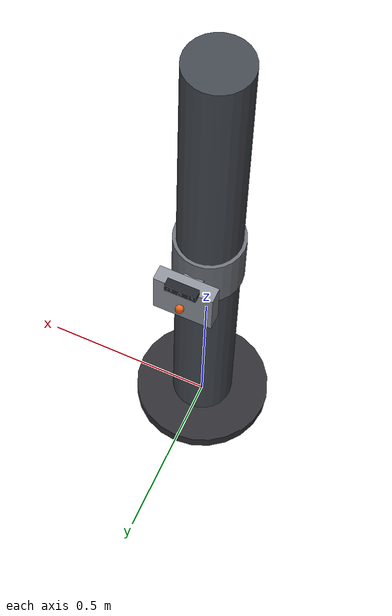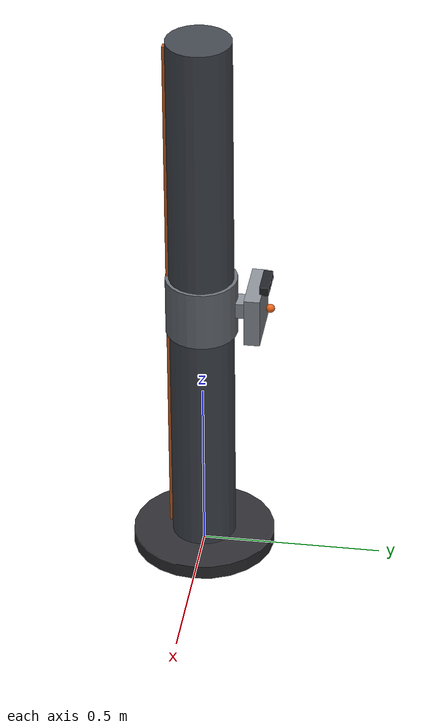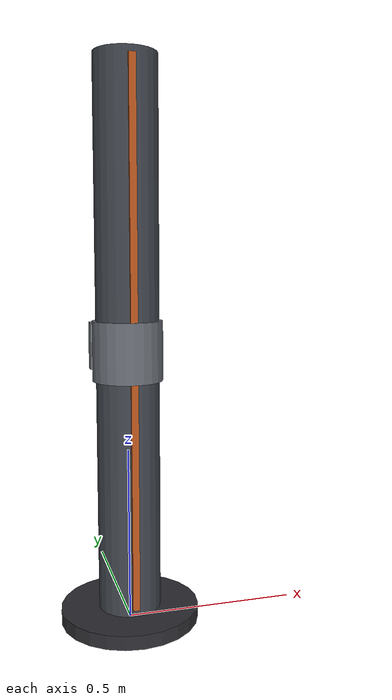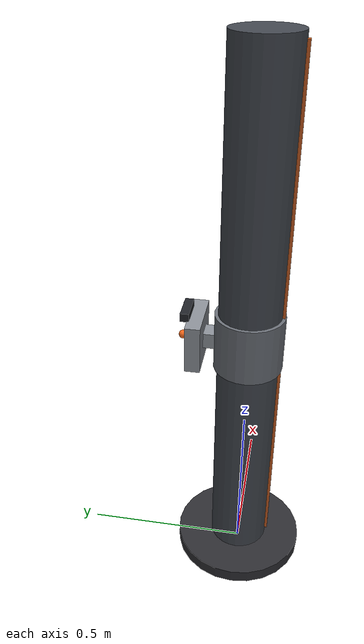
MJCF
<mujoco model="lift_tower">
  <!-- MuJoCo defaults to angle="degree". Without this line the hinge
       range below is read as +/-3.14 DEGREES and the tower barely turns. -->
  <compiler angle="radian" autolimits="true"/>

  <default>
    <default class="tower">
      <geom contype="1" conaffinity="2" rgba="0.26 0.28 0.31 1"
            solref="0.004 1" solimp="0.95 0.99 0.001"/>
    </default>
  </default>

  <worldbody>
    <body name="tower_base" pos="0 0 0">
      <geom name="base_plate" class="tower" type="cylinder"
            pos="0 0 0.02" size="0.20 0.02" rgba="0.18 0.18 0.20 1"/>

      <!-- ===== ROTARY JOINT ===== -->
      <body name="tower_column" pos="0 0 0.04">
        <joint name="tower_yaw" type="hinge" axis="0 0 1"
               range="-3.14159 3.14159" damping="12" armature="0.25"/>
        <inertial pos="0 0 0.55" mass="28" diaginertia="3.2 3.2 0.45"/>
        <geom name="column" class="tower" type="cylinder"
              pos="0 0 0.78" size="0.090 0.78"/>
        <!-- fin makes the rotation legible on camera -->
        <geom name="column_fin" class="tower" type="box"
              pos="0 -0.085 0.78" size="0.010 0.012 0.76"
              rgba="0.75 0.35 0.12 1"/>

        <!-- ===== PRISMATIC JOINT ===== -->
        <body name="carriage" pos="0 0 0.75">
          <joint name="tower_lift" type="slide" axis="0 0 1"
                 range="0 0.70" damping="220" armature="0.6"/>
          <inertial pos="0 0.10 0" mass="9" diaginertia="0.14 0.14 0.11"/>
          <!-- collar rides the column -->
          <geom name="carriage_collar" class="tower" type="cylinder"
                pos="0 0 0" size="0.100 0.085" rgba="0.42 0.44 0.47 1"/>
          <geom name="carriage_arm" class="tower" type="box"
                pos="0 0.095 0" size="0.0275 0.035 0.0225" rgba="0.55 0.57 0.60 1"/>
          <geom name="shoulder_plate" class="tower" type="box"
                pos="0 0.150 0" size="0.085 0.022 0.070" rgba="0.55 0.57 0.60 1"/>
          <site name="arm_mount" pos="0 0.190 0" size="0.012" rgba="0.95 0.4 0.1 1"/>

          <geom name="camera_body" type="box" contype="0" conaffinity="0"
                pos="0 0.178 0.080" size="0.045 0.0125 0.0125"
                rgba="0.13 0.14 0.16 1"/>
          <geom name="camera_lens_left" type="cylinder" contype="0" conaffinity="0"
                pos="-0.030 0.1908 0.080" euler="1.5708 0 0" size="0.0065 0.0022"
                rgba="0.05 0.07 0.13 1"/>
          <geom name="camera_lens_rgb" type="cylinder" contype="0" conaffinity="0"
                pos="0 0.1908 0.080" euler="1.5708 0 0" size="0.0050 0.0022"
                rgba="0.02 0.02 0.03 1"/>
          <geom name="camera_lens_right" type="cylinder" contype="0" conaffinity="0"
                pos="0.030 0.1908 0.080" euler="1.5708 0 0" size="0.0065 0.0022"
                rgba="0.05 0.07 0.13 1"/>
          <camera name="tower_eye" pos="0 0.190 0.080"
                  xyaxes="1 0 0  0 0.3420 0.9397" fovy="75"
                  resolution="640 480"/>
        </body>
      </body>
    </body>
  </worldbody>

  <actuator>
    <position name="tower_yaw_ctrl"  joint="tower_yaw"
              kp="900" kv="60"  ctrlrange="-3.14159 3.14159" forcerange="-320 320"/>
    <position name="tower_lift_ctrl" joint="tower_lift"
              kp="120000" kv="3000" ctrlrange="0 0.70" forcerange="-4000 4000"/>
  </actuator>
</mujoco>
